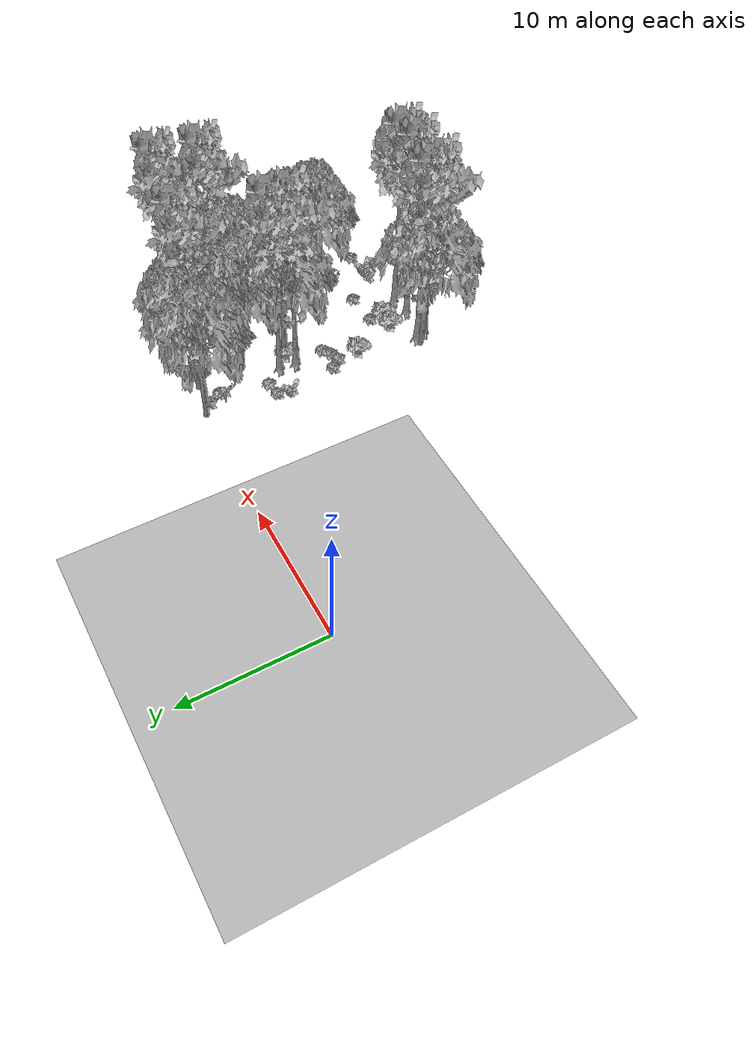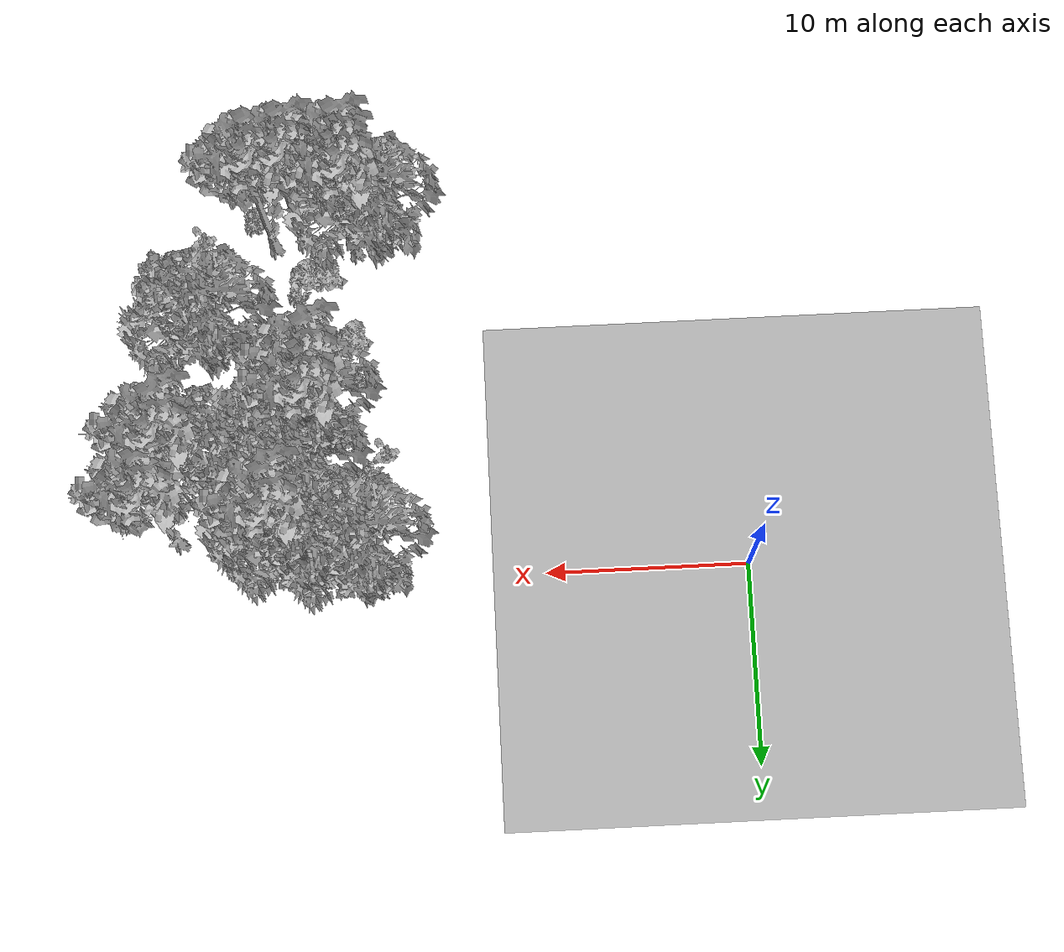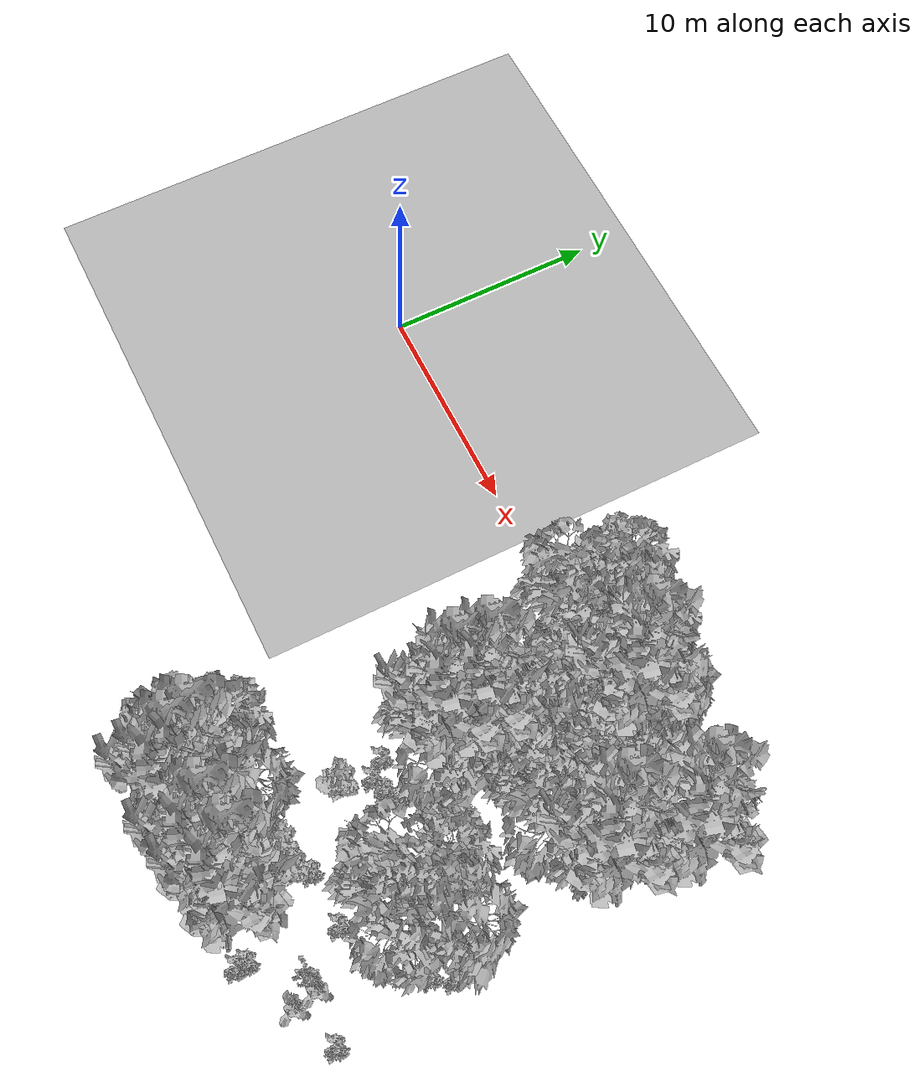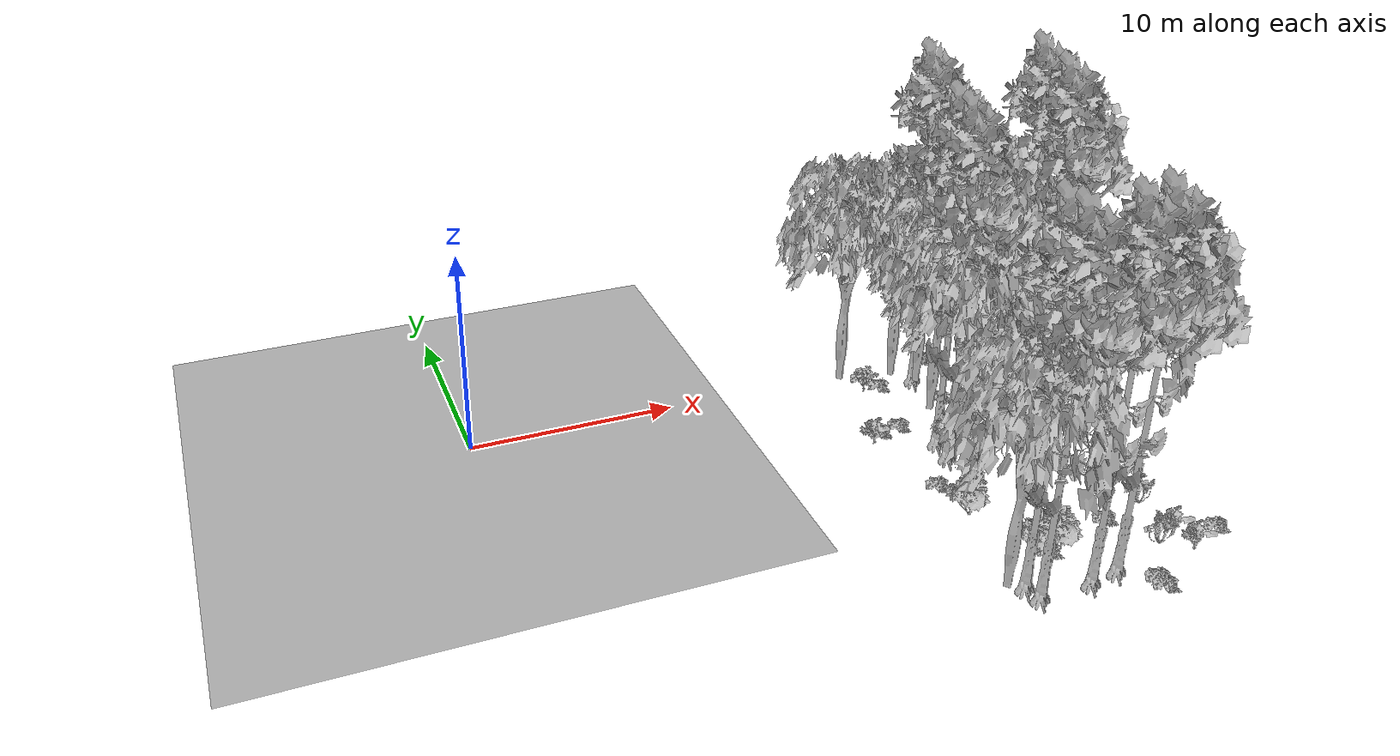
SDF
<sdf version="1.7">
 <world name="default">
  <model name="ground_plane">
   <static>1</static>
   <link name="link">
    <collision name="collision">
     <pose>-50 0 0 0 -0 0</pose>
     <geometry><plane><normal>0 0 1</normal><size>80 80</size></plane></geometry>
     <surface><contact><ode><min_depth>0.01</min_depth><max_vel>0</max_vel></ode></contact></surface>
    </collision>
    <visual name="grass">
     <cast_shadows>0</cast_shadows>
     <geometry>
      <mesh>
       <scale>0.46714285714285714 0.46714285714285714 0.1</scale>
       <uri>file://grass_plane/meshes/grass_plane.dae</uri>
      </mesh>
     </geometry>
    </visual>
   </link>
  </model>
  <model name="Tree 71">
   <static>1</static>
   <pose>27.33160166326904 -5.20181397574035 0 1.57079 -0 0</pose>
   <link name="link">
    <collision name="collision">
     <geometry><mesh><scale>3.5 5 3.5</scale><uri>model://tree_9/meshes/tree_9.obj</uri></mesh></geometry>
    </collision>
    <visual name="visual">
     <geometry><mesh><scale>3.5 5 3.5</scale><uri>model://tree_9/meshes/tree_9.obj</uri></mesh></geometry>
    </visual>
   </link>
  </model>
  <model name="Tree 73">
   <static>1</static>
   <pose>25.922246912626633 -11.711187237226106 0 1.57079 -0 0</pose>
   <link name="link">
    <collision name="collision">
     <geometry><mesh><scale>3.5 5 3.5</scale><uri>model://tree_2/meshes/tree_2.obj</uri></mesh></geometry>
    </collision>
    <visual name="visual">
     <geometry><mesh><scale>3.5 5 3.5</scale><uri>model://tree_2/meshes/tree_2.obj</uri></mesh></geometry>
    </visual>
   </link>
  </model>
  <model name="Tree 75">
   <static>1</static>
   <pose>19.04604465277157 -17.769992908543486 0 1.57079 -0 0</pose>
   <link name="link">
    <collision name="collision">
     <geometry><mesh><scale>3.5 5 3.5</scale><uri>model://tree_9/meshes/tree_9.obj</uri></mesh></geometry>
    </collision>
    <visual name="visual">
     <geometry><mesh><scale>3.5 5 3.5</scale><uri>model://tree_9/meshes/tree_9.obj</uri></mesh></geometry>
    </visual>
   </link>
  </model>
  <model name="Tree 111">
   <static>1</static>
   <pose>21.52194935786806 -17.717138890290833 0 1.57079 -0 0</pose>
   <link name="link">
    <collision name="collision">
     <geometry><mesh><scale>3.5 5 3.5</scale><uri>model://tree_9/meshes/tree_9.obj</uri></mesh></geometry>
    </collision>
    <visual name="visual">
     <geometry><mesh><scale>3.5 5 3.5</scale><uri>model://tree_9/meshes/tree_9.obj</uri></mesh></geometry>
    </visual>
   </link>
  </model>
  <model name="Tree 128">
   <static>1</static>
   <pose>22.406116993153375 -1.9466134858257504 0 1.57079 -0 0</pose>
   <link name="link">
    <collision name="collision">
     <geometry><mesh><scale>3.5 5 3.5</scale><uri>model://tree_2/meshes/tree_2.obj</uri></mesh></geometry>
    </collision>
    <visual name="visual">
     <geometry><mesh><scale>3.5 5 3.5</scale><uri>model://tree_2/meshes/tree_2.obj</uri></mesh></geometry>
    </visual>
   </link>
  </model>
  <model name="Tree 137">
   <static>1</static>
   <pose>21.76598647701779 -4.409270019194189 0 1.57079 -0 0</pose>
   <link name="link">
    <collision name="collision">
     <geometry><mesh><scale>3.5 5 3.5</scale><uri>model://tree_2/meshes/tree_2.obj</uri></mesh></geometry>
    </collision>
    <visual name="visual">
     <geometry><mesh><scale>3.5 5 3.5</scale><uri>model://tree_2/meshes/tree_2.obj</uri></mesh></geometry>
    </visual>
   </link>
  </model>
  <model name="Tree 221">
   <static>1</static>
   <pose>17.95703369362441 -16.889863063799304 0 1.57079 -0 0</pose>
   <link name="link">
    <collision name="collision">
     <geometry><mesh><scale>3.5 5 3.5</scale><uri>model://tree_2/meshes/tree_2.obj</uri></mesh></geometry>
    </collision>
    <visual name="visual">
     <geometry><mesh><scale>3.5 5 3.5</scale><uri>model://tree_2/meshes/tree_2.obj</uri></mesh></geometry>
    </visual>
   </link>
  </model>
  <model name="Tree 224">
   <static>1</static>
   <pose>21.090016328957304 -7.423757897621719 0 1.57079 -0 0</pose>
   <link name="link">
    <collision name="collision">
     <geometry><mesh><scale>3.5 5 3.5</scale><uri>model://tree_2/meshes/tree_2.obj</uri></mesh></geometry>
    </collision>
    <visual name="visual">
     <geometry><mesh><scale>3.5 5 3.5</scale><uri>model://tree_2/meshes/tree_2.obj</uri></mesh></geometry>
    </visual>
   </link>
  </model>
  <model name="Tree 262">
   <static>1</static>
   <pose>22.943118430746622 -17.471797465039714 0 1.57079 -0 0</pose>
   <link name="link">
    <collision name="collision">
     <geometry><mesh><scale>3.5 5 3.5</scale><uri>model://tree_9/meshes/tree_9.obj</uri></mesh></geometry>
    </collision>
    <visual name="visual">
     <geometry><mesh><scale>3.5 5 3.5</scale><uri>model://tree_9/meshes/tree_9.obj</uri></mesh></geometry>
    </visual>
   </link>
  </model>
  <model name="Tree 272">
   <static>1</static>
   <pose>18.83357668981091 -17.004872915148724 0 1.57079 -0 0</pose>
   <link name="link">
    <collision name="collision">
     <geometry><mesh><scale>3.5 5 3.5</scale><uri>model://tree_9/meshes/tree_9.obj</uri></mesh></geometry>
    </collision>
    <visual name="visual">
     <geometry><mesh><scale>3.5 5 3.5</scale><uri>model://tree_9/meshes/tree_9.obj</uri></mesh></geometry>
    </visual>
   </link>
  </model>
  <model name="Tree 294">
   <static>1</static>
   <pose>21.512890047608515 -0.958798287458329 0 1.57079 -0 0</pose>
   <link name="link">
    <collision name="collision">
     <geometry><mesh><scale>3.5 5 3.5</scale><uri>model://tree_2/meshes/tree_2.obj</uri></mesh></geometry>
    </collision>
    <visual name="visual">
     <geometry><mesh><scale>3.5 5 3.5</scale><uri>model://tree_2/meshes/tree_2.obj</uri></mesh></geometry>
    </visual>
   </link>
  </model>
  <model name="Tree 320">
   <static>1</static>
   <pose>25.095625435478432 -5.030494872984278 0 1.57079 -0 0</pose>
   <link name="link">
    <collision name="collision">
     <geometry><mesh><scale>3.5 5 3.5</scale><uri>model://tree_2/meshes/tree_2.obj</uri></mesh></geometry>
    </collision>
    <visual name="visual">
     <geometry><mesh><scale>3.5 5 3.5</scale><uri>model://tree_2/meshes/tree_2.obj</uri></mesh></geometry>
    </visual>
   </link>
  </model>
  <model name="Tree 385">
   <static>1</static>
   <pose>20.6447658791042 -8.041074603423475 0 1.57079 -0 0</pose>
   <link name="link">
    <collision name="collision">
     <geometry><mesh><scale>3.5 5 3.5</scale><uri>model://tree_9/meshes/tree_9.obj</uri></mesh></geometry>
    </collision>
    <visual name="visual">
     <geometry><mesh><scale>3.5 5 3.5</scale><uri>model://tree_9/meshes/tree_9.obj</uri></mesh></geometry>
    </visual>
   </link>
  </model>
  <model name="Tree 462">
   <static>1</static>
   <pose>20.78162835875233 -6.841635389039915 0 1.57079 -0 0</pose>
   <link name="link">
    <collision name="collision">
     <geometry><mesh><scale>3.5 5 3.5</scale><uri>model://tree_9/meshes/tree_9.obj</uri></mesh></geometry>
    </collision>
    <visual name="visual">
     <geometry><mesh><scale>3.5 5 3.5</scale><uri>model://tree_9/meshes/tree_9.obj</uri></mesh></geometry>
    </visual>
   </link>
  </model>
  <model name="Tree 467">
   <static>1</static>
   <pose>18.914524072011503 -0.3974499904951614 0 1.57079 -0 0</pose>
   <link name="link">
    <collision name="collision">
     <geometry><mesh><scale>3.5 5 3.5</scale><uri>model://tree_2/meshes/tree_2.obj</uri></mesh></geometry>
    </collision>
    <visual name="visual">
     <geometry><mesh><scale>3.5 5 3.5</scale><uri>model://tree_2/meshes/tree_2.obj</uri></mesh></geometry>
    </visual>
   </link>
  </model>
  <model name="Tree 497">
   <static>1</static>
   <pose>27.984561455866995 -2.334403416006168 0 1.57079 -0 0</pose>
   <link name="link">
    <collision name="collision">
     <geometry><mesh><scale>3.5 5 3.5</scale><uri>model://tree_9/meshes/tree_9.obj</uri></mesh></geometry>
    </collision>
    <visual name="visual">
     <geometry><mesh><scale>3.5 5 3.5</scale><uri>model://tree_9/meshes/tree_9.obj</uri></mesh></geometry>
    </visual>
   </link>
  </model>
  <model name="Tree 568">
   <static>1</static>
   <pose>22.580301589567206 -1.5101785980148748 0 1.57079 -0 0</pose>
   <link name="link">
    <collision name="collision">
     <geometry><mesh><scale>3.5 5 3.5</scale><uri>model://tree_9/meshes/tree_9.obj</uri></mesh></geometry>
    </collision>
    <visual name="visual">
     <geometry><mesh><scale>3.5 5 3.5</scale><uri>model://tree_9/meshes/tree_9.obj</uri></mesh></geometry>
    </visual>
   </link>
  </model>
  <model name="Bush 23">
   <static>1</static>
   <pose>23.961780704221454 -19.199562305087543 0 1.57079 -0 0</pose>
   <link name="link">
    <collision name="collision">
     <geometry><mesh><scale>2 2 2</scale><uri>model://bush_2/meshes/bush_2.obj</uri></mesh></geometry>
     <surface><contact><collide_without_contact>false</collide_without_contact></contact></surface>
    </collision>
    <visual name="visual">
     <geometry><mesh><scale>2 2 2</scale><uri>model://bush_2/meshes/bush_2.obj</uri></mesh></geometry>
    </visual>
   </link>
  </model>
  <model name="Bush 45">
   <static>1</static>
   <pose>19.52922936827173 -5.435685795290851 0 1.57079 -0 0</pose>
   <link name="link">
    <collision name="collision">
     <geometry><mesh><scale>2 2 2</scale><uri>model://bush_2/meshes/bush_2.obj</uri></mesh></geometry>
     <surface><contact><collide_without_contact>false</collide_without_contact></contact></surface>
    </collision>
    <visual name="visual">
     <geometry><mesh><scale>2 2 2</scale><uri>model://bush_2/meshes/bush_2.obj</uri></mesh></geometry>
    </visual>
   </link>
  </model>
  <model name="Bush 78">
   <static>1</static>
   <pose>24.309333691614142 -14.767207184629932 0 1.57079 -0 0</pose>
   <link name="link">
    <collision name="collision">
     <geometry><mesh><scale>2 2 2</scale><uri>model://bush_2/meshes/bush_2.obj</uri></mesh></geometry>
     <surface><contact><collide_without_contact>false</collide_without_contact></contact></surface>
    </collision>
    <visual name="visual">
     <geometry><mesh><scale>2 2 2</scale><uri>model://bush_2/meshes/bush_2.obj</uri></mesh></geometry>
    </visual>
   </link>
  </model>
  <model name="Bush 92">
   <static>1</static>
   <pose>27.723725447935195 -12.28994579244242 0 1.57079 -0 0</pose>
   <link name="link">
    <collision name="collision">
     <geometry><mesh><scale>2 2 2</scale><uri>model://bush_2/meshes/bush_2.obj</uri></mesh></geometry>
     <surface><contact><collide_without_contact>false</collide_without_contact></contact></surface>
    </collision>
    <visual name="visual">
     <geometry><mesh><scale>2 2 2</scale><uri>model://bush_2/meshes/bush_2.obj</uri></mesh></geometry>
    </visual>
   </link>
  </model>
  <model name="Bush 93">
   <static>1</static>
   <pose>21.10736860472452 -7.6408058987224265 0 1.57079 -0 0</pose>
   <link name="link">
    <collision name="collision">
     <geometry><mesh><scale>2 2 2</scale><uri>model://bush_1/meshes/bush_1.obj</uri></mesh></geometry>
     <surface><contact><collide_without_contact>false</collide_without_contact></contact></surface>
    </collision>
    <visual name="visual">
     <geometry><mesh><scale>2 2 2</scale><uri>model://bush_1/meshes/bush_1.obj</uri></mesh></geometry>
    </visual>
   </link>
  </model>
  <model name="Bush 113">
   <static>1</static>
   <pose>19.845830088426077 -1.064292859320581 0 1.57079 -0 0</pose>
   <link name="link">
    <collision name="collision">
     <geometry><mesh><scale>2 2 2</scale><uri>model://bush_2/meshes/bush_2.obj</uri></mesh></geometry>
     <surface><contact><collide_without_contact>false</collide_without_contact></contact></surface>
    </collision>
    <visual name="visual">
     <geometry><mesh><scale>2 2 2</scale><uri>model://bush_2/meshes/bush_2.obj</uri></mesh></geometry>
    </visual>
   </link>
  </model>
  <model name="Bush 114">
   <static>1</static>
   <pose>19.415652260046564 -10.897794594754231 0 1.57079 -0 0</pose>
   <link name="link">
    <collision name="collision">
     <geometry><mesh><scale>2 2 2</scale><uri>model://bush_2/meshes/bush_2.obj</uri></mesh></geometry>
     <surface><contact><collide_without_contact>false</collide_without_contact></contact></surface>
    </collision>
    <visual name="visual">
     <geometry><mesh><scale>2 2 2</scale><uri>model://bush_2/meshes/bush_2.obj</uri></mesh></geometry>
    </visual>
   </link>
  </model>
  <model name="Bush 129">
   <static>1</static>
   <pose>25.566275976673793 -16.7890845562051 0 1.57079 -0 0</pose>
   <link name="link">
    <collision name="collision">
     <geometry><mesh><scale>2 2 2</scale><uri>model://bush_4/meshes/bush_4.obj</uri></mesh></geometry>
     <surface><contact><collide_without_contact>false</collide_without_contact></contact></surface>
    </collision>
    <visual name="visual">
     <geometry><mesh><scale>2 2 2</scale><uri>model://bush_4/meshes/bush_4.obj</uri></mesh></geometry>
    </visual>
   </link>
  </model>
  <model name="Bush 169">
   <static>1</static>
   <pose>20.28262387849039 -15.682823593116915 0 1.57079 -0 0</pose>
   <link name="link">
    <collision name="collision">
     <geometry><mesh><scale>2 2 2</scale><uri>model://bush_1/meshes/bush_1.obj</uri></mesh></geometry>
     <surface><contact><collide_without_contact>false</collide_without_contact></contact></surface>
    </collision>
    <visual name="visual">
     <geometry><mesh><scale>2 2 2</scale><uri>model://bush_1/meshes/bush_1.obj</uri></mesh></geometry>
    </visual>
   </link>
  </model>
  <model name="Bush 188">
   <static>1</static>
   <pose>19.072087248742896 -12.38569629882629 0 1.57079 -0 0</pose>
   <link name="link">
    <collision name="collision">
     <geometry><mesh><scale>2 2 2</scale><uri>model://bush_1/meshes/bush_1.obj</uri></mesh></geometry>
     <surface><contact><collide_without_contact>false</collide_without_contact></contact></surface>
    </collision>
    <visual name="visual">
     <geometry><mesh><scale>2 2 2</scale><uri>model://bush_1/meshes/bush_1.obj</uri></mesh></geometry>
    </visual>
   </link>
  </model>
  <model name="Bush 239">
   <static>1</static>
   <pose>18.460427083428534 -5.593461158442665 0 1.57079 -0 0</pose>
   <link name="link">
    <collision name="collision">
     <geometry><mesh><scale>2 2 2</scale><uri>model://bush_2/meshes/bush_2.obj</uri></mesh></geometry>
     <surface><contact><collide_without_contact>false</collide_without_contact></contact></surface>
    </collision>
    <visual name="visual">
     <geometry><mesh><scale>2 2 2</scale><uri>model://bush_2/meshes/bush_2.obj</uri></mesh></geometry>
    </visual>
   </link>
  </model>
  <model name="Bush 260">
   <static>1</static>
   <pose>21.846442630749273 -14.859761691016729 0 1.57079 -0 0</pose>
   <link name="link">
    <collision name="collision">
     <geometry><mesh><scale>2 2 2</scale><uri>model://bush_2/meshes/bush_2.obj</uri></mesh></geometry>
     <surface><contact><collide_without_contact>false</collide_without_contact></contact></surface>
    </collision>
    <visual name="visual">
     <geometry><mesh><scale>2 2 2</scale><uri>model://bush_2/meshes/bush_2.obj</uri></mesh></geometry>
    </visual>
   </link>
  </model>
  <model name="Bush 262">
   <static>1</static>
   <pose>20.09351821798782 -10.644598297696007 0 1.57079 -0 0</pose>
   <link name="link">
    <collision name="collision">
     <geometry><mesh><scale>2 2 2</scale><uri>model://bush_2/meshes/bush_2.obj</uri></mesh></geometry>
     <surface><contact><collide_without_contact>false</collide_without_contact></contact></surface>
    </collision>
    <visual name="visual">
     <geometry><mesh><scale>2 2 2</scale><uri>model://bush_2/meshes/bush_2.obj</uri></mesh></geometry>
    </visual>
   </link>
  </model>
  <model name="Bush 291">
   <static>1</static>
   <pose>18.81671583053538 -10.173741027809726 0 1.57079 -0 0</pose>
   <link name="link">
    <collision name="collision">
     <geometry><mesh><scale>2 2 2</scale><uri>model://bush_2/meshes/bush_2.obj</uri></mesh></geometry>
     <surface><contact><collide_without_contact>false</collide_without_contact></contact></surface>
    </collision>
    <visual name="visual">
     <geometry><mesh><scale>2 2 2</scale><uri>model://bush_2/meshes/bush_2.obj</uri></mesh></geometry>
    </visual>
   </link>
  </model>
  <model name="Bush 387">
   <static>1</static>
   <pose>21.384832859960106 -15.719748313556039 0 1.57079 -0 0</pose>
   <link name="link">
    <collision name="collision">
     <geometry><mesh><scale>2 2 2</scale><uri>model://bush_1/meshes/bush_1.obj</uri></mesh></geometry>
     <surface><contact><collide_without_contact>false</collide_without_contact></contact></surface>
    </collision>
    <visual name="visual">
     <geometry><mesh><scale>2 2 2</scale><uri>model://bush_1/meshes/bush_1.obj</uri></mesh></geometry>
    </visual>
   </link>
  </model>
  <model name="Bush 400">
   <static>1</static>
   <pose>19.51036705359938 -2.0264875932957978 0 1.57079 -0 0</pose>
   <link name="link">
    <collision name="collision">
     <geometry><mesh><scale>2 2 2</scale><uri>model://bush_5/meshes/bush_5.obj</uri></mesh></geometry>
     <surface><contact><collide_without_contact>false</collide_without_contact></contact></surface>
    </collision>
    <visual name="visual">
     <geometry><mesh><scale>2 2 2</scale><uri>model://bush_5/meshes/bush_5.obj</uri></mesh></geometry>
    </visual>
   </link>
  </model>
  <model name="Bush 412">
   <static>1</static>
   <pose>20.778768845930884 -15.799963451928694 0 1.57079 -0 0</pose>
   <link name="link">
    <collision name="collision">
     <geometry><mesh><scale>2 2 2</scale><uri>model://bush_2/meshes/bush_2.obj</uri></mesh></geometry>
     <surface><contact><collide_without_contact>false</collide_without_contact></contact></surface>
    </collision>
    <visual name="visual">
     <geometry><mesh><scale>2 2 2</scale><uri>model://bush_2/meshes/bush_2.obj</uri></mesh></geometry>
    </visual>
   </link>
  </model>
  <model name="Bush 422">
   <static>1</static>
   <pose>26.41882715260884 -16.580699991346677 0 1.57079 -0 0</pose>
   <link name="link">
    <collision name="collision">
     <geometry><mesh><scale>2 2 2</scale><uri>model://bush_0/meshes/bush_0.obj</uri></mesh></geometry>
     <surface><contact><collide_without_contact>false</collide_without_contact></contact></surface>
    </collision>
    <visual name="visual">
     <geometry><mesh><scale>2 2 2</scale><uri>model://bush_0/meshes/bush_0.obj</uri></mesh></geometry>
    </visual>
   </link>
  </model>
  <model name="Bush 432">
   <static>1</static>
   <pose>23.69232802004226 -0.42563412476760476 0 1.57079 -0 0</pose>
   <link name="link">
    <collision name="collision">
     <geometry><mesh><scale>2 2 2</scale><uri>model://bush_2/meshes/bush_2.obj</uri></mesh></geometry>
     <surface><contact><collide_without_contact>false</collide_without_contact></contact></surface>
    </collision>
    <visual name="visual">
     <geometry><mesh><scale>2 2 2</scale><uri>model://bush_2/meshes/bush_2.obj</uri></mesh></geometry>
    </visual>
   </link>
  </model>
  <model name="Bush 439">
   <static>1</static>
   <pose>26.534025178759833 -14.206441436329698 0 1.57079 -0 0</pose>
   <link name="link">
    <collision name="collision">
     <geometry><mesh><scale>2 2 2</scale><uri>model://bush_4/meshes/bush_4.obj</uri></mesh></geometry>
     <surface><contact><collide_without_contact>false</collide_without_contact></contact></surface>
    </collision>
    <visual name="visual">
     <geometry><mesh><scale>2 2 2</scale><uri>model://bush_4/meshes/bush_4.obj</uri></mesh></geometry>
    </visual>
   </link>
  </model>
  <model name="Bush 450">
   <static>1</static>
   <pose>20.353784652181815 -1.9795726555030413 0 1.57079 -0 0</pose>
   <link name="link">
    <collision name="collision">
     <geometry><mesh><scale>2 2 2</scale><uri>model://bush_2/meshes/bush_2.obj</uri></mesh></geometry>
     <surface><contact><collide_without_contact>false</collide_without_contact></contact></surface>
    </collision>
    <visual name="visual">
     <geometry><mesh><scale>2 2 2</scale><uri>model://bush_2/meshes/bush_2.obj</uri></mesh></geometry>
    </visual>
   </link>
  </model>
  <model name="Bush 451">
   <static>1</static>
   <pose>23.966325212384433 -18.71372933685314 0 1.57079 -0 0</pose>
   <link name="link">
    <collision name="collision">
     <geometry><mesh><scale>2 2 2</scale><uri>model://bush_2/meshes/bush_2.obj</uri></mesh></geometry>
     <surface><contact><collide_without_contact>false</collide_without_contact></contact></surface>
    </collision>
    <visual name="visual">
     <geometry><mesh><scale>2 2 2</scale><uri>model://bush_2/meshes/bush_2.obj</uri></mesh></geometry>
    </visual>
   </link>
  </model>
  <model name="Bush 454">
   <static>1</static>
   <pose>26.648141544493157 -17.672380802182033 0 1.57079 -0 0</pose>
   <link name="link">
    <collision name="collision">
     <geometry><mesh><scale>2 2 2</scale><uri>model://bush_0/meshes/bush_0.obj</uri></mesh></geometry>
     <surface><contact><collide_without_contact>false</collide_without_contact></contact></surface>
    </collision>
    <visual name="visual">
     <geometry><mesh><scale>2 2 2</scale><uri>model://bush_0/meshes/bush_0.obj</uri></mesh></geometry>
    </visual>
   </link>
  </model>
  <model name="Bush 485">
   <static>1</static>
   <pose>28.48038171186711 -16.846558496087383 0 1.57079 -0 0</pose>
   <link name="link">
    <collision name="collision">
     <geometry><mesh><scale>2 2 2</scale><uri>model://bush_2/meshes/bush_2.obj</uri></mesh></geometry>
     <surface><contact><collide_without_contact>false</collide_without_contact></contact></surface>
    </collision>
    <visual name="visual">
     <geometry><mesh><scale>2 2 2</scale><uri>model://bush_2/meshes/bush_2.obj</uri></mesh></geometry>
    </visual>
   </link>
  </model>
  <model name="Bush 550">
   <static>1</static>
   <pose>22.649132681771178 -3.934893406666589 0 1.57079 -0 0</pose>
   <link name="link">
    <collision name="collision">
     <geometry><mesh><scale>2 2 2</scale><uri>model://bush_2/meshes/bush_2.obj</uri></mesh></geometry>
     <surface><contact><collide_without_contact>false</collide_without_contact></contact></surface>
    </collision>
    <visual name="visual">
     <geometry><mesh><scale>2 2 2</scale><uri>model://bush_2/meshes/bush_2.obj</uri></mesh></geometry>
    </visual>
   </link>
  </model>
  <model name="Bush 580">
   <static>1</static>
   <pose>17.79611224581157 -6.212636707541385 0 1.57079 -0 0</pose>
   <link name="link">
    <collision name="collision">
     <geometry><mesh><scale>2 2 2</scale><uri>model://bush_0/meshes/bush_0.obj</uri></mesh></geometry>
     <surface><contact><collide_without_contact>false</collide_without_contact></contact></surface>
    </collision>
    <visual name="visual">
     <geometry><mesh><scale>2 2 2</scale><uri>model://bush_0/meshes/bush_0.obj</uri></mesh></geometry>
    </visual>
   </link>
  </model>
  <model name="Bush 582">
   <static>1</static>
   <pose>20.685782655965355 -10.230027315177857 0 1.57079 -0 0</pose>
   <link name="link">
    <collision name="collision">
     <geometry><mesh><scale>2 2 2</scale><uri>model://bush_2/meshes/bush_2.obj</uri></mesh></geometry>
     <surface><contact><collide_without_contact>false</collide_without_contact></contact></surface>
    </collision>
    <visual name="visual">
     <geometry><mesh><scale>2 2 2</scale><uri>model://bush_2/meshes/bush_2.obj</uri></mesh></geometry>
    </visual>
   </link>
  </model>
  <model name="Bush 608">
   <static>1</static>
   <pose>28.21765560775603 -11.496917871259225 0 1.57079 -0 0</pose>
   <link name="link">
    <collision name="collision">
     <geometry><mesh><scale>2 2 2</scale><uri>model://bush_2/meshes/bush_2.obj</uri></mesh></geometry>
     <surface><contact><collide_without_contact>false</collide_without_contact></contact></surface>
    </collision>
    <visual name="visual">
     <geometry><mesh><scale>2 2 2</scale><uri>model://bush_2/meshes/bush_2.obj</uri></mesh></geometry>
    </visual>
   </link>
  </model>
 </world>
</sdf>
